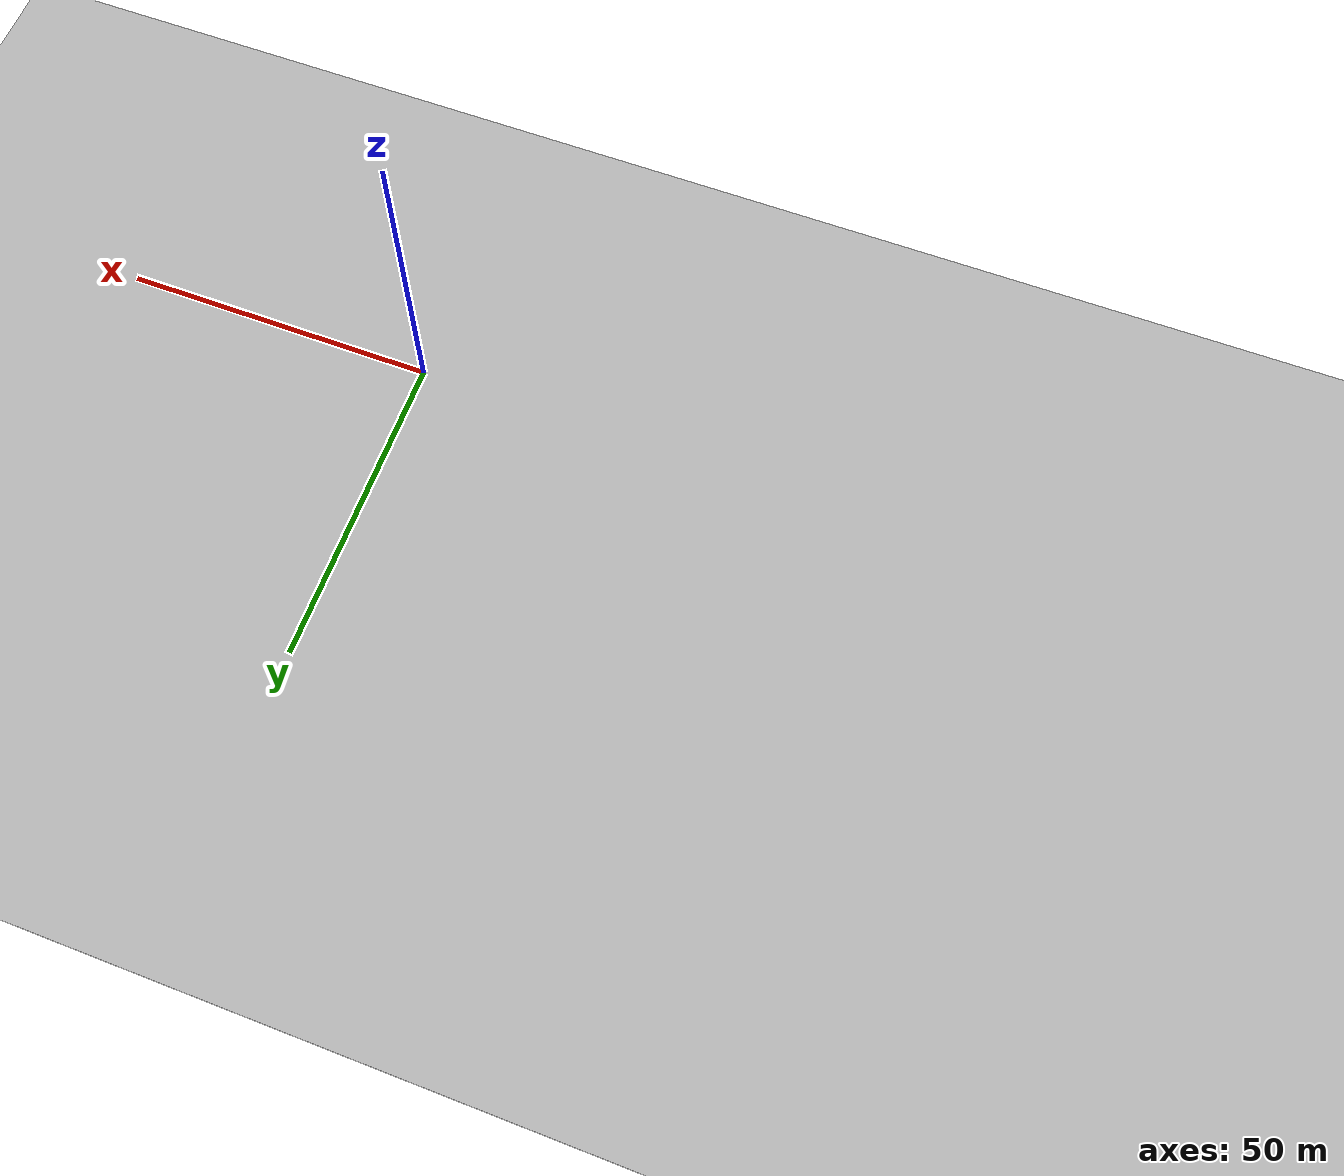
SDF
<?xml version="1.0" ?>
<sdf version="1.4">
	<world name="default">

		<!-- Physics variables -->

		<physics type='ode'>
		      <gravity>0 0 -9.81</gravity>
			<ode>
				<solver>
			          <use_dynamic_moi_rescaling>true</use_dynamic_moi_rescaling>
					<type>quick</type>
					<iters>50</iters>
					<sor>1.0</sor>
				</solver>
				<constraints>
					<cfm>0.0</cfm>
					<erp>0.2</erp>
					<contact_max_correcting_vel>100.0</contact_max_correcting_vel>
					<contact_surface_layer>0.0</contact_surface_layer>
				</constraints>
			</ode>
			<max_step_size>0.001</max_step_size>
			<real_time_factor>1</real_time_factor>
			<real_time_update_rate>1000</real_time_update_rate>
		</physics>

		<!-- Include 8-Track -->
		<include>
			<uri>model://mbzirc</uri>
		</include>
		<!-- Include ground color -->
		<include>
	    		<uri>model://cricket_ground</uri>
	  	</include>
	  	<!-- Include Sun -->
		<include>
			<uri>model://sun</uri>
		</include>

		<!-- Target Template -->
		<include>
			<uri>model://target_square</uri>
		</include>

		<!-- Starting Area Model -->

		<model name='start_area'>
			<static>true</static>
			<pose>0 0 0.002 0 0 0</pose>
			<link name='link'>
				<visual name='visual'>
					<cast_shadows>false</cast_shadows>
					<geometry>
					      <plane>
						      <normal>0 0 1</normal>
						      <size>10 10</size>
					      </plane>
				    	</geometry>
				    	<material>
					      <script>
							<uri>file://media/materials/scripts/gazebo.material</uri>
							<name>Gazebo/Grey</name>
					      </script>
				     </material>
			  	</visual>
				<self_collide>false</self_collide>
				<kinematic>false</kinematic>
				<gravity>true</gravity>
			</link>
		</model>

		<!-- Challange Area -->

		<model name='main_area'>
			<static>true</static>
			<pose>-65 25 0.001 0 -0 0</pose>
			<link name='link'>
		    		<visual name='visual'>
		      		<cast_shadows>false</cast_shadows>
			      	<geometry>
				        	<plane>
					          	<normal>0 0 1</normal>
					          	<size>100 60</size>
				        	</plane>
				      </geometry>
		      		<material>
		        		<script>
		      			<uri>model://cricket_ground/materials/scripts</uri>
		      			<uri>model://cricket_ground/materials/textures</uri>
		      			<name>cricket_ground/Image</name>
		        		</script>
		      		</material>
		    		</visual>
		    		<self_collide>false</self_collide>
		    		<kinematic>false</kinematic>
		    		<gravity>true</gravity>
	  		</link>
		</model>

		<!-- Droping Area Model -->

		<model name='drop_area'>
		 	<static>true</static>
			<pose>-130 50 0.002 0 -0 0</pose>
		      	<link name='link'>
		      		<visual name='visual'>
			        		<cast_shadows>false</cast_shadows>
			        		<geometry>
		          				<plane>
		            				<normal>0 0 1</normal>
		            				<size>10 10</size>
		          				</plane>
		        			</geometry>
		        			<material>
			          			<script>
			            			<uri>file://media/materials/scripts/gazebo.material</uri>
						           <name>Gazebo/Grey</name>
						      </script>
		        			</material>
		      		</visual>
				      <self_collide>false</self_collide>
				      <kinematic>false</kinematic>
				      <gravity>true</gravity>
		    		</link>
		</model>

		<!-- camera position -->
		<gui>
	      	<camera name="user_camera">
	        		<pose>-65 25 50 0 1.57075 1.57075 </pose>
	      	</camera>
	    </gui>
		<!-- ardupilot sitl gazebo model plugin -->

	    	<plugin name="ardupilot_sitl_gazebo_plugin" filename="libardupilot_sitl_gazebo_plugin.so">
			<UAV_MODEL>erlecopter</UAV_MODEL>
	    	</plugin>
	</world>
</sdf>

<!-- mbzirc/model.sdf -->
<sdf version="1.5">
	<model name="mbzirc">
	    	<static>true</static>
		<pose>-115 55 0.01 0 -0 0</pose>
           <allow_auto_disable>true</allow_auto_disable>
	    	<link name="link_track">
			<pose>0 0 0 0 0 0</pose>
			<gravity>true</gravity>
			<self_collide>false</self_collide>
			<kinematic>false</kinematic>
		      <visual name="visual_track">
				<pose>0 0 0 0 0 0</pose>
		      	<geometry>
		           		<mesh>
		            		<uri>model://mbzirc/meshes/track.stl</uri>
		          			<scale>100 100 100</scale>
		          		</mesh>
		        	</geometry>
			      <material>Gazebo/Blue</material>
		     </visual>
	    </link>
	</model>
</sdf>

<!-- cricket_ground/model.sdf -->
<sdf version="1.4">
	<model name="cricket_ground">
		<static>true</static>
		<link name="link">
			<collision name="collision">
		      	<geometry>
		        		<plane>
		          			<normal>0 0 1</normal>
		          			<size>500 500</size>
		        		</plane>
		      	</geometry>
		      	<surface>
		        		<friction>
			          		<ode>
			            		<mu>100</mu>
			            		<mu2>50</mu2>
			          		</ode>
		        		</friction>
		      	</surface>
		    	</collision>
		    	<visual name="visual">
		     		<cast_shadows>false</cast_shadows>
		      	<geometry>
		        		<plane>
		          			<normal>0 0 1</normal>
		          			<size>500 500</size>
		        		</plane>
		      	</geometry>
		      	<material>
		        		<script>
		      			<uri>model://cricket_ground/materials/scripts</uri>
		      			<uri>model://cricket_ground/materials/textures</uri>
		      			<name>cricket_ground/Image</name>
		    		</script>
		      	</material>
		    </visual>
		</link>
	</model>
</sdf>

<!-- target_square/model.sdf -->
<sdf version="1.5">
	<model name="target_square">
    		<static>true</static>
    		<link name="link">
	      		<pose>-65 25 0.05 0 0 0</pose>
	      		<visual name="visual">
				<geometry>
					<box>
						<size>1.5 1.5 .015</size>
					</box>
				</geometry>
				<material>
					<script>
						<uri>model://target_square/materials/scripts</uri>
						<uri>model://target_square/materials/textures</uri>
						<name>target_square/Image</name>
					</script>
				</material>
	      		</visual>
    		</link>
    		<plugin name="mark_driver" filename="libtemplate_plugin.so">
	      		<shape>eight_simple</shape>
	    	</plugin>
  	</model>
</sdf>
